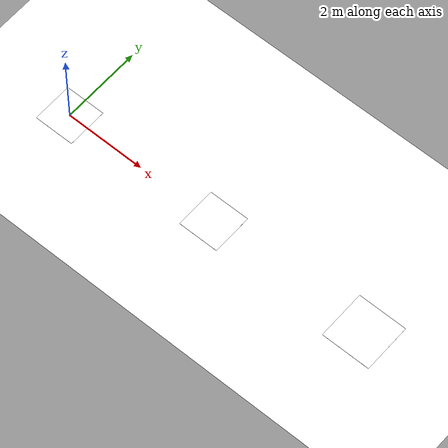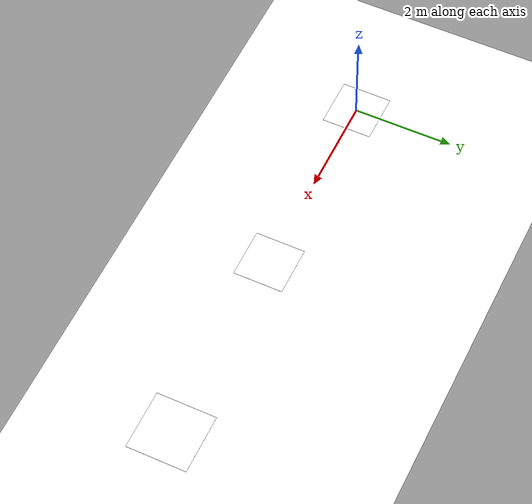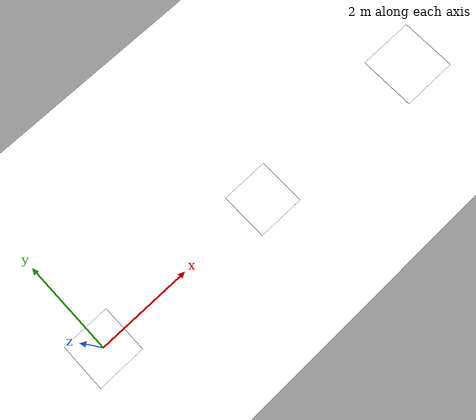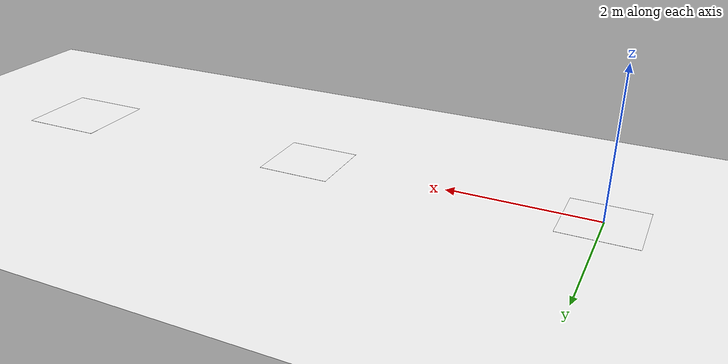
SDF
<?xml version="1.0" ?>
<sdf version="1.9">
  <world name="land_markers_compact">
    <physics name="1ms" type="dart">
      <max_step_size>0.004</max_step_size>
      <real_time_factor>1.0</real_time_factor>
      <real_time_update_rate>250</real_time_update_rate>
    </physics>

    <plugin filename="gz-sim-physics-system" name="gz::sim::systems::Physics"/>
    <plugin filename="gz-sim-user-commands-system" name="gz::sim::systems::UserCommands"/>
    <plugin filename="gz-sim-scene-broadcaster-system" name="gz::sim::systems::SceneBroadcaster"/>
    <plugin filename="gz-sim-contact-system" name="gz::sim::systems::Contact"/>
    <plugin filename="gz-sim-imu-system" name="gz::sim::systems::Imu"/>
    <plugin filename="gz-sim-air-pressure-system" name="gz::sim::systems::AirPressure"/>
    <plugin filename="gz-sim-magnetometer-system" name="gz::sim::systems::Magnetometer"/>
    <plugin filename="gz-sim-apply-link-wrench-system" name="gz::sim::systems::ApplyLinkWrench"/>
    <plugin filename="gz-sim-navsat-system" name="gz::sim::systems::NavSat"/>
    <plugin filename="gz-sim-sensors-system" name="gz::sim::systems::Sensors">
      <render_engine>ogre2</render_engine>
    </plugin>

    <gravity>0 0 -9.8066</gravity>
    <magnetic_field>5.5645e-6 2.28758e-5 -4.23884e-5</magnetic_field>
    <atmosphere type="adiabatic"/>

    <scene>
      <grid>false</grid>
      <ambient>0.4 0.4 0.4 1</ambient>
      <background>0.7 0.7 0.7 1</background>
      <shadows>false</shadows>
    </scene>

    <include>
      <uri>model://concrete_ground_1km</uri>
    </include>

    <!-- Home is aruco_land_1 at the west end. The fields are four metres apart,
         so the large DICT_4X4_1000 markers at fields 1 and 3 remain in view
         throughout the short no-GPS test route. -->
    <include>
      <uri>model://aruco_land_1</uri>
      <pose>0 0 0 0 0 0</pose>
    </include>
    <include>
      <uri>model://aruco_land_2</uri>
      <pose>4 0 0 0 0 0</pose>
    </include>
    <include>
      <uri>model://aruco_land_3</uri>
      <pose>8 0 0 0 0 0</pose>
    </include>

    <light name="sunUTC" type="directional">
      <pose>0 0 500 0 0 0</pose>
      <cast_shadows>false</cast_shadows>
      <intensity>1.0</intensity>
      <direction>0.001 0.625 -0.78</direction>
      <diffuse>1 1 1 1</diffuse>
      <specular>0.271 0.271 0.271 1</specular>
      <attenuation>
        <range>2000</range><linear>0</linear><constant>1</constant><quadratic>0</quadratic>
      </attenuation>
      <spot><inner_angle>0</inner_angle><outer_angle>0</outer_angle><falloff>0</falloff></spot>
    </light>

    <spherical_coordinates>
      <surface_model>EARTH_WGS84</surface_model>
      <world_frame_orientation>ENU</world_frame_orientation>
      <latitude_deg>47.397971057728974</latitude_deg>
      <longitude_deg>8.546163739800146</longitude_deg>
      <elevation>0</elevation>
    </spherical_coordinates>
  </world>
</sdf>

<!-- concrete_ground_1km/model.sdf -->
<sdf version="1.9">
  <model name="concrete_ground_1km">
    <static>true</static>
    <link name="link">
      <collision name="collision">
        <geometry>
          <plane>
            <normal>0 0 1</normal>
            <size>1 1</size>
          </plane>
        </geometry>
        <surface>
          <friction>
            <ode><mu>100</mu><mu2>50</mu2></ode>
          </friction>
        </surface>
      </collision>
      <visual name="visual">
        <cast_shadows>false</cast_shadows>
        <geometry>
          <mesh>
            <uri>model://concrete_ground_1km/meshes/concrete_ground_1km.obj</uri>
          </mesh>
        </geometry>
        <material>
          <diffuse>1 1 1 1</diffuse>
          <specular>0 0 0 1</specular>
          <pbr>
            <metal>
              <albedo_map>model://concrete_ground_1km/materials/textures/concrete_neutral_color.png</albedo_map>
              <emissive_map>model://concrete_ground_1km/materials/textures/concrete_neutral_color.png</emissive_map>
              <roughness>1.0</roughness>
            </metal>
          </pbr>
        </material>
      </visual>
    </link>
  </model>
</sdf>

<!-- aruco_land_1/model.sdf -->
<sdf version="1.9">
  <model name="aruco_land_1">
    <static>true</static>
    <link name="link">
      <visual name="markers">
        <pose>0 0 0.003 0 0 0</pose>
        <cast_shadows>false</cast_shadows>
        <geometry>
          <plane>
            <normal>0 0 1</normal>
            <size>1 1</size>
          </plane>
        </geometry>
        <material>
          <diffuse>1 1 1 1</diffuse>
          <specular>0 0 0 1</specular>
          <pbr>
            <metal>
              <albedo_map>model://aruco_land_1/materials/textures/aruco_land_1.png</albedo_map>
              <emissive_map>model://aruco_land_1/materials/textures/aruco_land_1.png</emissive_map>
              <roughness>1.0</roughness>
            </metal>
          </pbr>
        </material>
      </visual>
    </link>
  </model>
</sdf>

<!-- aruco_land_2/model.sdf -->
<sdf version="1.9">
  <model name="aruco_land_2">
    <static>true</static>
    <link name="link">
      <visual name="markers">
        <pose>0 0 0.003 0 0 0</pose>
        <cast_shadows>false</cast_shadows>
        <geometry>
          <plane>
            <normal>0 0 1</normal>
            <size>1 1</size>
          </plane>
        </geometry>
        <material>
          <diffuse>1 1 1 1</diffuse>
          <specular>0 0 0 1</specular>
          <pbr>
            <metal>
              <albedo_map>model://aruco_land_2/materials/textures/aruco_land_2.png</albedo_map>
              <emissive_map>model://aruco_land_2/materials/textures/aruco_land_2.png</emissive_map>
              <roughness>1.0</roughness>
            </metal>
          </pbr>
        </material>
      </visual>
    </link>
  </model>
</sdf>

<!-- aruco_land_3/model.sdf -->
<sdf version="1.9">
  <model name="aruco_land_3">
    <static>true</static>
    <link name="link">
      <visual name="markers">
        <pose>0 0 0.003 0 0 0</pose>
        <cast_shadows>false</cast_shadows>
        <geometry>
          <plane>
            <normal>0 0 1</normal>
            <size>1.2 1.2</size>
          </plane>
        </geometry>
        <material>
          <diffuse>1 1 1 1</diffuse>
          <specular>0 0 0 1</specular>
          <pbr>
            <metal>
              <albedo_map>model://aruco_land_3/materials/textures/map.png</albedo_map>
              <emissive_map>model://aruco_land_3/materials/textures/map.png</emissive_map>
              <roughness>1.0</roughness>
            </metal>
          </pbr>
        </material>
      </visual>
    </link>
  </model>
</sdf>
